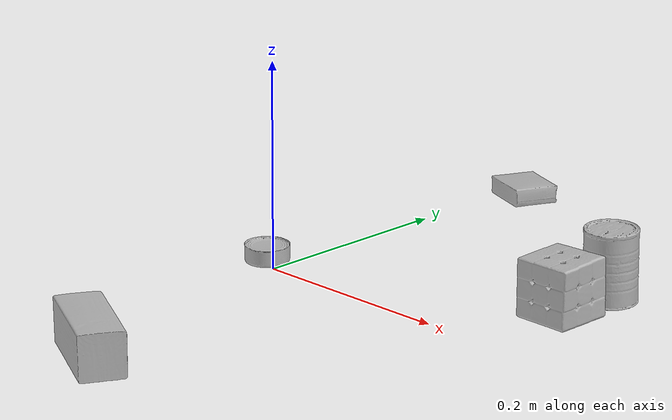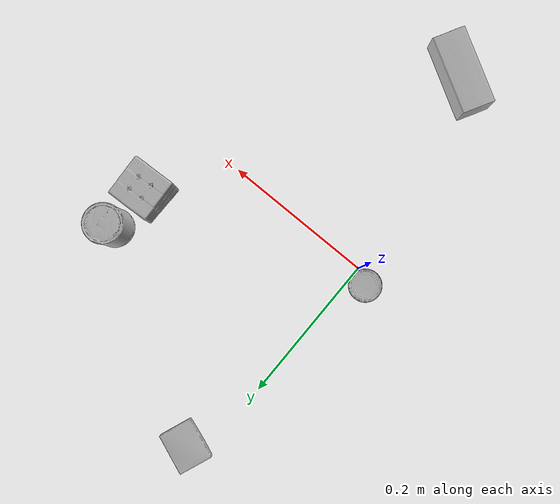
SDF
<sdf version="1.4">
  <world name="default">
    <light name="light1" type="point">
      <pose>0 0 1 0 0 0</pose>
      <diffuse>3 3 3 1</diffuse>
      <specular>3 3 3 1</specular>
    </light>
    <light name="light2" type="point">
      <pose>0 0.5 2 0 0 0</pose>
      <diffuse>1 1 1 1</diffuse>
      <specular>1 1 1 1</specular>
    </light>
    <light name="light3" type="point">
      <pose>0 0.5 2 0 0 0</pose>
      <diffuse>3 3 3 1</diffuse>
      <specular>3 3 3 1</specular>
    </light>
    <scene>
      <ambient>0.7 0.7 0.7</ambient>
    </scene>
    <model name="box1">
      <link name="link_box1">
        <collision name="default">
          <geometry>
            <mesh>
              <uri>model://rubiks_cube/collision_meshes/collision.obj</uri>
              <scale>1.0 1.0 1.0</scale>
            </mesh>
          </geometry>
          <surface>
            <friction>
              <ode>
                <mu>0.5</mu>
                <mu2>0.5</mu2>
              </ode>
            </friction>
          <contact>
        <ode>
            <max_vel>0</max_vel>
            <min_depth>0.0001</min_depth>
            <kp>1e8</kp>
        </ode>
    </contact></surface>
        </collision>
        <visual name="default">
          <geometry>
            <mesh>
              <uri>model://rubiks_cube/visual_meshes/visual.dae</uri>
              <scale>1.0 1.0 1.0</scale>
            </mesh>
          </geometry>
        </visual>
        <inertial>
          <mass>0.19534927606582642</mass>
          <pose>2.6721041649580002e-05 5.256967051536776e-05 -7.264316082000732e-06 -0.05467254413799041 -0.09813991388320625 -0.034457004790174134</pose>
          <inertia>
            <ixx>0.0001079436</ixx>
            <iyy>0.00010744019</iyy>
            <izz>0.000108838074</izz>
            <ixy>0</ixy>
            <ixz>0</ixz>
            <iyz>0</iyz>
          </inertia>
        </inertial>
      </link>
      <pose>0.2698337435722351 0.09675796329975128 0.028679003939032555 -1.6750923369261748e-06 4.933516884793804e-07 -1.533231534447011</pose>
    </model>
    <model name="box2">
      <link name="link_box2">
        <collision name="default">
          <geometry>
            <mesh>
              <uri>model://pudding_box/collision_meshes/collision.obj</uri>
              <scale>0.5 0.5 0.5</scale>
            </mesh>
          </geometry>
          <surface>
            <friction>
              <ode>
                <mu>0.5</mu>
                <mu2>0.5</mu2>
              </ode>
            </friction>
          <contact>
        <ode>
            <max_vel>0</max_vel>
            <min_depth>0.0001</min_depth>
            <kp>1e8</kp>
        </ode>
    </contact></surface>
        </collision>
        <visual name="default">
          <geometry>
            <mesh>
              <uri>model://pudding_box/visual_meshes/visual.dae</uri>
              <scale>0.5 0.5 0.5</scale>
            </mesh>
          </geometry>
        </visual>
        <inertial>
          <mass>0.04727919027209282</mass>
          <pose>0.00024474109522998333 0.00040339428232982755 -0.0002594413817860186 0.0052131013240192415 -0.0066037977924420415 0.020079828889419827</pose>
          <inertia>
            <ixx>1.3361672e-05</ixx>
            <iyy>8.9898285e-06</iyy>
            <izz>1.9732002e-05</izz>
            <ixy>0</ixy>
            <ixz>0</ixz>
            <iyz>0</iyz>
          </inertia>
        </inertial>
      </link>
      <pose>0.025601200759410858 0.31061989068984985 0.009862900711596012 0.022348297032667854 -0.011391825659278978 -1.9469555803853007</pose>
    </model>
    <model name="box3">
      <link name="link_box3">
        <collision name="default">
          <geometry>
            <mesh>
              <uri>model://wood_block/collision_meshes/collision.obj</uri>
              <scale>0.5 0.5 0.5</scale>
            </mesh>
          </geometry>
          <surface>
            <friction>
              <ode>
                <mu>0.5</mu>
                <mu2>0.5</mu2>
              </ode>
            </friction>
          <contact>
        <ode>
            <max_vel>0</max_vel>
            <min_depth>0.0001</min_depth>
            <kp>1e8</kp>
        </ode>
    </contact></surface>
        </collision>
        <visual name="default">
          <geometry>
            <mesh>
              <uri>model://wood_block/visual_meshes/visual.dae</uri>
              <scale>0.5 0.5 0.5</scale>
            </mesh>
          </geometry>
        </visual>
        <inertial>
          <mass>0.3041442632675171</mass>
          <pose>-2.9066577553749084e-06 -0.000285404734313488 0.00013204291462898254 -0.05220823380361383 -0.0051926957206686235 -0.0068613778665259926</pose>
          <inertia>
            <ixx>0.00010174775</ixx>
            <iyy>0.0003214212</iyy>
            <izz>0.0003202189</izz>
            <ixy>0</ixy>
            <ixz>0</ixz>
            <iyz>0</iyz>
          </inertia>
        </inertial>
      </link>
      <pose>0.05673348531126976 -0.2733454704284668 0.022629262879490852 -0.005208424020239223 0.005718762085917944 2.634826463452431</pose>
    </model>
    <model name="can1">
      <link name="link_can1">
        <collision name="default">
          <geometry>
            <mesh>
              <uri>model://master_chef_can/collision_meshes/collision.obj</uri>
              <scale>0.5 0.5 0.5</scale>
            </mesh>
          </geometry>
          <surface>
            <friction>
              <ode>
                <mu>0.5</mu>
                <mu2>0.5</mu2>
              </ode>
            </friction>
          <contact>
        <ode>
            <max_vel>0</max_vel>
            <min_depth>0.0001</min_depth>
            <kp>1e8</kp>
        </ode>
    </contact></surface>
        </collision>
        <visual name="default">
          <geometry>
            <mesh>
              <uri>model://master_chef_can/visual_meshes/visual.dae</uri>
              <scale>0.5 0.5 0.5</scale>
            </mesh>
          </geometry>
        </visual>
        <inertial>
          <mass>0.18719419836997986</mass>
          <pose>-4.661963976104744e-05 1.3926856468060578e-07 -5.0798327720258385e-05 -0.0017995099067415357 0.0006479319374111454 -0.6102582770449616</pose>
          <inertia>
            <ixx>0.0001098703</ixx>
            <iyy>0.00010906167</iyy>
            <izz>6.071174e-05</izz>
            <ixy>0</ixy>
            <ixz>0</ixz>
            <iyz>0</iyz>
          </inertia>
        </inertial>
      </link>
      <pose>0.27383676171302795 0.15820620954036713 0.03530197963118553 -1.398171008982115e-06 -1.0013408768492216e-06 -0.8203730792298595</pose>
    </model>
    <model name="can2">
      <link name="link_can2">
        <collision name="default">
          <geometry>
            <mesh>
              <uri>model://tuna_fish_can/collision_meshes/collision.obj</uri>
              <scale>0.5 0.5 0.5</scale>
            </mesh>
          </geometry>
          <surface>
            <friction>
              <ode>
                <mu>0.5</mu>
                <mu2>0.5</mu2>
              </ode>
            </friction>
          <contact>
        <ode>
            <max_vel>0</max_vel>
            <min_depth>0.0001</min_depth>
            <kp>1e8</kp>
        </ode>
    </contact></surface>
        </collision>
        <visual name="default">
          <geometry>
            <mesh>
              <uri>model://tuna_fish_can/visual_meshes/visual.dae</uri>
              <scale>0.5 0.5 0.5</scale>
            </mesh>
          </geometry>
        </visual>
        <inertial>
          <mass>0.011327341198921204</mass>
          <pose>-2.0361354472697712e-05 -7.256336175487377e-06 -0.0005269023822620511 -0.001794480782384504 0.00017159763230480823 0.24052991368062646</pose>
          <inertia>
            <ixx>1.5314733e-06</ixx>
            <iyy>1.52509e-06</iyy>
            <izz>2.6205691e-06</izz>
            <ixy>0</ixy>
            <ixz>0</ixz>
            <iyz>0</iyz>
          </inertia>
        </inertial>
      </link>
      <pose>-0.020510299131274223 0.011752193793654442 0.008520001545548439 4.166028942697683e-09 5.393624783486894e-10 -2.4687003049049236</pose>
    </model>
  <physics type="ode">
      <max_contacts>50</max_contacts>
      <ode>
        <solver>
          <type>quick</type>
          <iters>75</iters>
        </solver>
        <constraints>
          <contact_max_correcting_vel>0</contact_max_correcting_vel>
          <contact_surface_layer>0</contact_surface_layer>
        </constraints>
      </ode>
    </physics></world>
</sdf>
